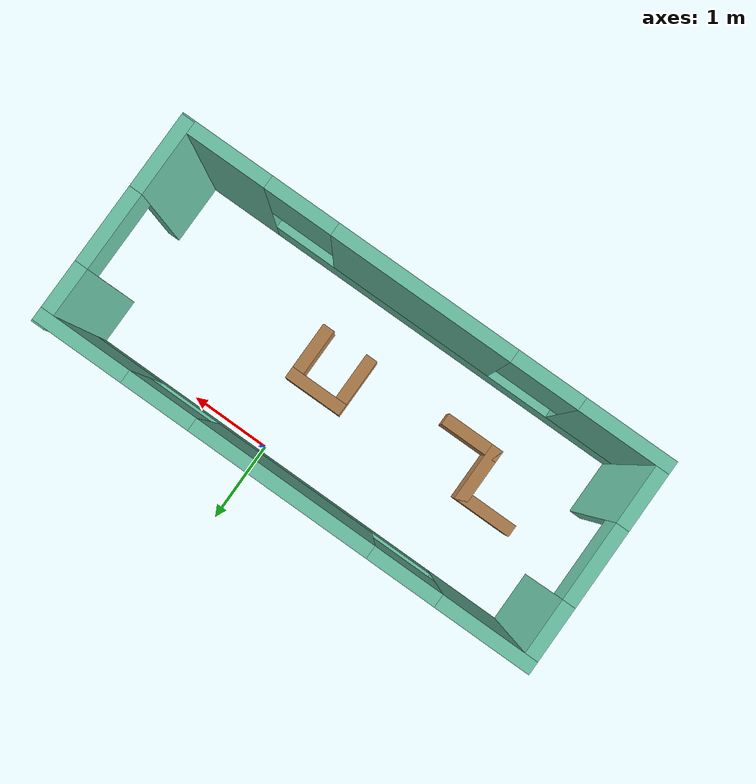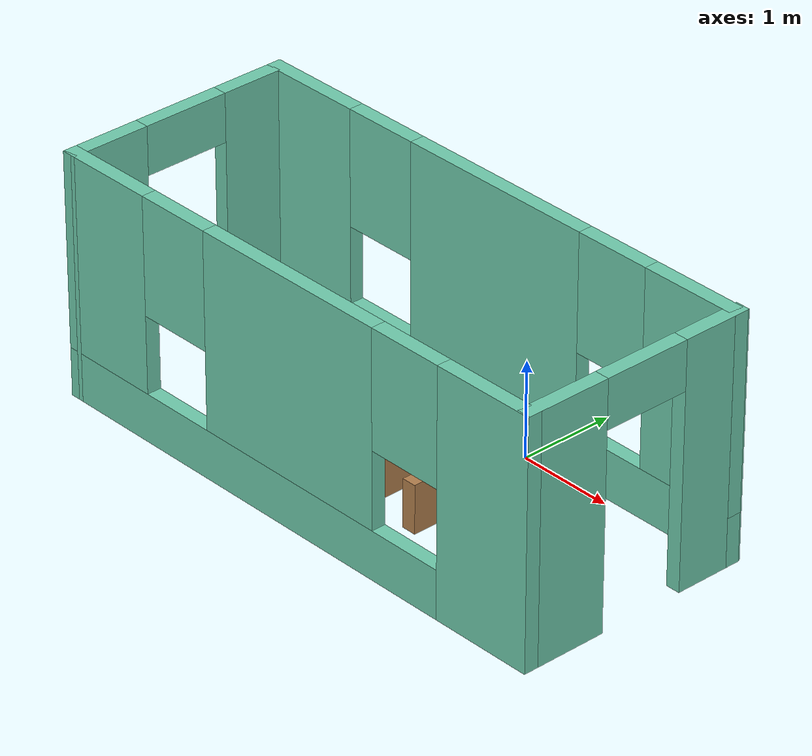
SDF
<?xml version='1.0'?>
<sdf version='1.6'>
  <model name='house_1'>
    <pose frame=''>-0.541561 -1.02646 0 0 -0 0</pose>
    <link name='Wall_0'>
      <pose frame=''>-2.86844 -0.008536 0 0 -0 1.5708</pose>
      <visual name='Wall_0_Visual_0'>
        <pose frame=''>-0.837769 0 1.25 0 -0 0</pose>
        <geometry>
          <box>
            <size>0.824461 0.15 2.5</size>
          </box>
        </geometry>
        <material>
          <script>
            <uri>file://media/materials/scripts/gazebo.material</uri>
            <name>Gazebo/Grey</name>
          </script>
          <ambient>0.435294 0.796078 0.67451 1</ambient>
        </material>
        <meta>
          <layer>0</layer>
        </meta>
      </visual>
      <collision name='Wall_0_Collision_0'>
        <geometry>
          <box>
            <size>0.824461 0.15 2.5</size>
          </box>
        </geometry>
        <pose frame=''>-0.837769 0 1.25 0 -0 0</pose>
      </collision>
      <visual name='Wall_0_Visual_1'>
        <pose frame=''>0.862231 0 1.25 0 -0 0</pose>
        <geometry>
          <box>
            <size>0.775539 0.15 2.5</size>
          </box>
        </geometry>
        <material>
          <script>
            <uri>file://media/materials/scripts/gazebo.material</uri>
            <name>Gazebo/Grey</name>
          </script>
          <ambient>0.435294 0.796078 0.67451 1</ambient>
        </material>
        <meta>
          <layer>0</layer>
        </meta>
      </visual>
      <collision name='Wall_0_Collision_1'>
        <geometry>
          <box>
            <size>0.775539 0.15 2.5</size>
          </box>
        </geometry>
        <pose frame=''>0.862231 0 1.25 0 -0 0</pose>
      </collision>
      <visual name='Wall_0_Visual_2'>
        <pose frame=''>0.024461 0 2.25 0 -0 0</pose>
        <geometry>
          <box>
            <size>0.9 0.15 0.5</size>
          </box>
        </geometry>
        <material>
          <script>
            <uri>file://media/materials/scripts/gazebo.material</uri>
            <name>Gazebo/Grey</name>
          </script>
          <ambient>0.435294 0.796078 0.67451 1</ambient>
        </material>
        <meta>
          <layer>0</layer>
        </meta>
      </visual>
      <collision name='Wall_0_Collision_2'>
        <geometry>
          <box>
            <size>0.9 0.15 0.5</size>
          </box>
        </geometry>
        <pose frame=''>0.024461 0 2.25 0 -0 0</pose>
      </collision>
    </link>
    <link name='Wall_1'>
      <pose frame=''>0 1.16741 0 0 -0 0.000329</pose>
      <visual name='Wall_1_Visual_0'>
        <pose frame=''>-2.38896 0 1.25 0 -0 0</pose>
        <geometry>
          <box>
            <size>1.10948 0.15 2.5</size>
          </box>
        </geometry>
        <material>
          <script>
            <uri>file://media/materials/scripts/gazebo.material</uri>
            <name>Gazebo/Grey</name>
          </script>
          <ambient>0.435294 0.796078 0.67451 1</ambient>
        </material>
        <meta>
          <layer>0</layer>
        </meta>
      </visual>
      <collision name='Wall_1_Collision_0'>
        <geometry>
          <box>
            <size>1.10948 0.15 2.5</size>
          </box>
        </geometry>
        <pose frame=''>-2.38896 0 1.25 0 -0 0</pose>
      </collision>
      <visual name='Wall_1_Visual_1'>
        <pose frame=''>0.554742 0 0.25 0 -0 0</pose>
        <geometry>
          <box>
            <size>4.77792 0.15 0.5</size>
          </box>
        </geometry>
        <material>
          <script>
            <uri>file://media/materials/scripts/gazebo.material</uri>
            <name>Gazebo/Grey</name>
          </script>
          <ambient>0.435294 0.796078 0.67451 1</ambient>
        </material>
        <meta>
          <layer>0</layer>
        </meta>
      </visual>
      <collision name='Wall_1_Collision_1'>
        <geometry>
          <box>
            <size>4.77792 0.15 0.5</size>
          </box>
        </geometry>
        <pose frame=''>0.554742 0 0.25 0 -0 0</pose>
      </collision>
      <visual name='Wall_1_Visual_2'>
        <pose frame=''>0.024303 0 1.5 0 -0 0</pose>
        <geometry>
          <box>
            <size>2.11705 0.15 2</size>
          </box>
        </geometry>
        <material>
          <script>
            <uri>file://media/materials/scripts/gazebo.material</uri>
            <name>Gazebo/Grey</name>
          </script>
          <ambient>0.435294 0.796078 0.67451 1</ambient>
        </material>
        <meta>
          <layer>0</layer>
        </meta>
      </visual>
      <collision name='Wall_1_Collision_2'>
        <geometry>
          <box>
            <size>2.11705 0.15 2</size>
          </box>
        </geometry>
        <pose frame=''>0.024303 0 1.5 0 -0 0</pose>
      </collision>
      <visual name='Wall_1_Visual_3'>
        <pose frame=''>2.41326 0 1.5 0 -0 0</pose>
        <geometry>
          <box>
            <size>1.06088 0.15 2</size>
          </box>
        </geometry>
        <material>
          <script>
            <uri>file://media/materials/scripts/gazebo.material</uri>
            <name>Gazebo/Grey</name>
          </script>
          <ambient>0.435294 0.796078 0.67451 1</ambient>
        </material>
        <meta>
          <layer>0</layer>
        </meta>
      </visual>
      <collision name='Wall_1_Collision_3'>
        <geometry>
          <box>
            <size>1.06088 0.15 2</size>
          </box>
        </geometry>
        <pose frame=''>2.41326 0 1.5 0 -0 0</pose>
      </collision>
      <visual name='Wall_1_Visual_4'>
        <pose frame=''>-1.43422 0 1.9 0 -0 0</pose>
        <geometry>
          <box>
            <size>0.8 0.15 1.2</size>
          </box>
        </geometry>
        <material>
          <script>
            <uri>file://media/materials/scripts/gazebo.material</uri>
            <name>Gazebo/Grey</name>
          </script>
          <ambient>0.435294 0.796078 0.67451 1</ambient>
        </material>
        <meta>
          <layer>0</layer>
        </meta>
      </visual>
      <collision name='Wall_1_Collision_4'>
        <geometry>
          <box>
            <size>0.8 0.15 1.2</size>
          </box>
        </geometry>
        <pose frame=''>-1.43422 0 1.9 0 -0 0</pose>
      </collision>
      <visual name='Wall_1_Visual_5'>
        <pose frame=''>1.48283 0 1.9 0 -0 0</pose>
        <geometry>
          <box>
            <size>0.8 0.15 1.2</size>
          </box>
        </geometry>
        <material>
          <script>
            <uri>file://media/materials/scripts/gazebo.material</uri>
            <name>Gazebo/Grey</name>
          </script>
          <ambient>0.435294 0.796078 0.67451 1</ambient>
        </material>
        <meta>
          <layer>0</layer>
        </meta>
      </visual>
      <collision name='Wall_1_Collision_5'>
        <geometry>
          <box>
            <size>0.8 0.15 1.2</size>
          </box>
        </geometry>
        <pose frame=''>1.48283 0 1.9 0 -0 0</pose>
      </collision>
    </link>
    <link name='Wall_10'>
      <collision name='Wall_10_Collision'>
        <geometry>
          <box>
            <size>0.75 0.15 0.5</size>
          </box>
        </geometry>
        <pose frame=''>0 0 0.25 0 -0 0</pose>
      </collision>
      <visual name='Wall_10_Visual'>
        <pose frame=''>0 0 0.25 0 -0 0</pose>
        <geometry>
          <box>
            <size>0.75 0.15 0.5</size>
          </box>
        </geometry>
        <material>
          <script>
            <uri>file://media/materials/scripts/gazebo.material</uri>
            <name>Gazebo/Wood</name>
          </script>
          <ambient>1 1 1 1</ambient>
        </material>
        <meta>
          <layer>0</layer>
        </meta>
      </visual>
      <pose frame=''>0.411561 0.159464 0 0 -0 0</pose>
    </link>
    <link name='Wall_11'>
      <collision name='Wall_11_Collision'>
        <geometry>
          <box>
            <size>0.75 0.15 0.5</size>
          </box>
        </geometry>
        <pose frame=''>0 0 0.25 0 -0 0</pose>
      </collision>
      <visual name='Wall_11_Visual'>
        <pose frame=''>0 0 0.25 0 -0 0</pose>
        <geometry>
          <box>
            <size>0.75 0.15 0.5</size>
          </box>
        </geometry>
        <material>
          <script>
            <uri>file://media/materials/scripts/gazebo.material</uri>
            <name>Gazebo/Wood</name>
          </script>
          <ambient>1 1 1 1</ambient>
        </material>
        <meta>
          <layer>0</layer>
        </meta>
      </visual>
      <pose frame=''>0.711561 -0.140536 0 0 -0 -1.5708</pose>
    </link>
    <link name='Wall_2'>
      <pose frame=''>2.86844 0.008561 0 0 -0 -1.5708</pose>
      <visual name='Wall_2_Visual_0'>
        <pose frame=''>-0.88778 0 1.25 0 -0 0</pose>
        <geometry>
          <box>
            <size>0.724439 0.15 2.5</size>
          </box>
        </geometry>
        <material>
          <script>
            <uri>file://media/materials/scripts/gazebo.material</uri>
            <name>Gazebo/Grey</name>
          </script>
          <ambient>0.435294 0.796078 0.67451 1</ambient>
        </material>
        <meta>
          <layer>0</layer>
        </meta>
      </visual>
      <collision name='Wall_2_Collision_0'>
        <geometry>
          <box>
            <size>0.724439 0.15 2.5</size>
          </box>
        </geometry>
        <pose frame=''>-0.88778 0 1.25 0 -0 0</pose>
      </collision>
      <visual name='Wall_2_Visual_1'>
        <pose frame=''>0.81222 0 1.25 0 -0 0</pose>
        <geometry>
          <box>
            <size>0.875561 0.15 2.5</size>
          </box>
        </geometry>
        <material>
          <script>
            <uri>file://media/materials/scripts/gazebo.material</uri>
            <name>Gazebo/Grey</name>
          </script>
          <ambient>0.435294 0.796078 0.67451 1</ambient>
        </material>
        <meta>
          <layer>0</layer>
        </meta>
      </visual>
      <collision name='Wall_2_Collision_1'>
        <geometry>
          <box>
            <size>0.875561 0.15 2.5</size>
          </box>
        </geometry>
        <pose frame=''>0.81222 0 1.25 0 -0 0</pose>
      </collision>
      <visual name='Wall_2_Visual_2'>
        <pose frame=''>-0.075561 0 2.25 0 -0 0</pose>
        <geometry>
          <box>
            <size>0.9 0.15 0.5</size>
          </box>
        </geometry>
        <material>
          <script>
            <uri>file://media/materials/scripts/gazebo.material</uri>
            <name>Gazebo/Grey</name>
          </script>
          <ambient>0.435294 0.796078 0.67451 1</ambient>
        </material>
        <meta>
          <layer>0</layer>
        </meta>
      </visual>
      <collision name='Wall_2_Collision_2'>
        <geometry>
          <box>
            <size>0.9 0.15 0.5</size>
          </box>
        </geometry>
        <pose frame=''>-0.075561 0 2.25 0 -0 0</pose>
      </collision>
    </link>
    <link name='Wall_3'>
      <pose frame=''>0 -1.18259 0 0 -0 -3.14126</pose>
      <visual name='Wall_3_Visual_0'>
        <pose frame=''>-2.40433 0 1.25 0 -0 0</pose>
        <geometry>
          <box>
            <size>1.07875 0.15 2.5</size>
          </box>
        </geometry>
        <material>
          <script>
            <uri>file://media/materials/scripts/gazebo.material</uri>
            <name>Gazebo/Grey</name>
          </script>
          <ambient>0.435294 0.796078 0.67451 1</ambient>
        </material>
        <meta>
          <layer>0</layer>
        </meta>
      </visual>
      <collision name='Wall_3_Collision_0'>
        <geometry>
          <box>
            <size>1.07875 0.15 2.5</size>
          </box>
        </geometry>
        <pose frame=''>-2.40433 0 1.25 0 -0 0</pose>
      </collision>
      <visual name='Wall_3_Visual_1'>
        <pose frame=''>0.539375 0 0.25 0 -0 0</pose>
        <geometry>
          <box>
            <size>4.80866 0.15 0.5</size>
          </box>
        </geometry>
        <material>
          <script>
            <uri>file://media/materials/scripts/gazebo.material</uri>
            <name>Gazebo/Grey</name>
          </script>
          <ambient>0.435294 0.796078 0.67451 1</ambient>
        </material>
        <meta>
          <layer>0</layer>
        </meta>
      </visual>
      <collision name='Wall_3_Collision_1'>
        <geometry>
          <box>
            <size>4.80866 0.15 0.5</size>
          </box>
        </geometry>
        <pose frame=''>0.539375 0 0.25 0 -0 0</pose>
      </collision>
      <visual name='Wall_3_Visual_2'>
        <pose frame=''>0.005122 0 1.5 0 -0 0</pose>
        <geometry>
          <box>
            <size>2.14015 0.15 2</size>
          </box>
        </geometry>
        <material>
          <script>
            <uri>file://media/materials/scripts/gazebo.material</uri>
            <name>Gazebo/Grey</name>
          </script>
          <ambient>0.435294 0.796078 0.67451 1</ambient>
        </material>
        <meta>
          <layer>0</layer>
        </meta>
      </visual>
      <collision name='Wall_3_Collision_2'>
        <geometry>
          <box>
            <size>2.14015 0.15 2</size>
          </box>
        </geometry>
        <pose frame=''>0.005122 0 1.5 0 -0 0</pose>
      </collision>
      <visual name='Wall_3_Visual_3'>
        <pose frame=''>2.40945 0 1.5 0 -0 0</pose>
        <geometry>
          <box>
            <size>1.06851 0.15 2</size>
          </box>
        </geometry>
        <material>
          <script>
            <uri>file://media/materials/scripts/gazebo.material</uri>
            <name>Gazebo/Grey</name>
          </script>
          <ambient>0.435294 0.796078 0.67451 1</ambient>
        </material>
        <meta>
          <layer>0</layer>
        </meta>
      </visual>
      <collision name='Wall_3_Collision_3'>
        <geometry>
          <box>
            <size>1.06851 0.15 2</size>
          </box>
        </geometry>
        <pose frame=''>2.40945 0 1.5 0 -0 0</pose>
      </collision>
      <visual name='Wall_3_Visual_4'>
        <pose frame=''>-1.46495 0 1.9 0 -0 0</pose>
        <geometry>
          <box>
            <size>0.8 0.15 1.2</size>
          </box>
        </geometry>
        <material>
          <script>
            <uri>file://media/materials/scripts/gazebo.material</uri>
            <name>Gazebo/Grey</name>
          </script>
          <ambient>0.435294 0.796078 0.67451 1</ambient>
        </material>
        <meta>
          <layer>0</layer>
        </meta>
      </visual>
      <collision name='Wall_3_Collision_4'>
        <geometry>
          <box>
            <size>0.8 0.15 1.2</size>
          </box>
        </geometry>
        <pose frame=''>-1.46495 0 1.9 0 -0 0</pose>
      </collision>
      <visual name='Wall_3_Visual_5'>
        <pose frame=''>1.4752 0 1.9 0 -0 0</pose>
        <geometry>
          <box>
            <size>0.8 0.15 1.2</size>
          </box>
        </geometry>
        <material>
          <script>
            <uri>file://media/materials/scripts/gazebo.material</uri>
            <name>Gazebo/Grey</name>
          </script>
          <ambient>0.435294 0.796078 0.67451 1</ambient>
        </material>
        <meta>
          <layer>0</layer>
        </meta>
      </visual>
      <collision name='Wall_3_Collision_5'>
        <geometry>
          <box>
            <size>0.8 0.15 1.2</size>
          </box>
        </geometry>
        <pose frame=''>1.4752 0 1.9 0 -0 0</pose>
      </collision>
    </link>
    <link name='Wall_5'>
      <collision name='Wall_5_Collision'>
        <geometry>
          <box>
            <size>0.75 0.15 0.5</size>
          </box>
        </geometry>
        <pose frame=''>0 0 0.25 0 -0 0</pose>
      </collision>
      <visual name='Wall_5_Visual'>
        <pose frame=''>0 0 0.25 0 -0 0</pose>
        <geometry>
          <box>
            <size>0.75 0.15 0.5</size>
          </box>
        </geometry>
        <material>
          <script>
            <uri>file://media/materials/scripts/gazebo.material</uri>
            <name>Gazebo/Wood</name>
          </script>
          <ambient>1 1 1 1</ambient>
        </material>
        <meta>
          <layer>0</layer>
        </meta>
      </visual>
      <pose frame=''>-1.94144 0.163464 0 0 -0 0</pose>
    </link>
    <link name='Wall_6'>
      <collision name='Wall_6_Collision'>
        <geometry>
          <box>
            <size>0.75 0.15 0.5</size>
          </box>
        </geometry>
        <pose frame=''>0 0 0.25 0 -0 0</pose>
      </collision>
      <visual name='Wall_6_Visual'>
        <pose frame=''>0 0 0.25 0 -0 0</pose>
        <geometry>
          <box>
            <size>0.75 0.15 0.5</size>
          </box>
        </geometry>
        <material>
          <script>
            <uri>file://media/materials/scripts/gazebo.material</uri>
            <name>Gazebo/Wood</name>
          </script>
          <ambient>1 1 1 1</ambient>
        </material>
        <meta>
          <layer>0</layer>
        </meta>
      </visual>
      <pose frame=''>-1.64144 -0.136536 0 0 -0 -1.5708</pose>
    </link>
    <link name='Wall_7'>
      <collision name='Wall_7_Collision'>
        <geometry>
          <box>
            <size>0.75 0.15 0.5</size>
          </box>
        </geometry>
        <pose frame=''>0 0 0.25 0 -0 0</pose>
      </collision>
      <visual name='Wall_7_Visual'>
        <pose frame=''>0 0 0.25 0 -0 0</pose>
        <geometry>
          <box>
            <size>0.75 0.15 0.5</size>
          </box>
        </geometry>
        <material>
          <script>
            <uri>file://media/materials/scripts/gazebo.material</uri>
            <name>Gazebo/Wood</name>
          </script>
          <ambient>1 1 1 1</ambient>
        </material>
        <meta>
          <layer>0</layer>
        </meta>
      </visual>
      <pose frame=''>-1.34144 -0.436536 0 0 -0 0</pose>
    </link>
    <link name='Wall_9'>
      <collision name='Wall_9_Collision'>
        <geometry>
          <box>
            <size>0.75 0.15 0.5</size>
          </box>
        </geometry>
        <pose frame=''>0 0 0.25 0 -0 0</pose>
      </collision>
      <visual name='Wall_9_Visual'>
        <pose frame=''>0 0 0.25 0 -0 0</pose>
        <geometry>
          <box>
            <size>0.75 0.15 0.5</size>
          </box>
        </geometry>
        <material>
          <script>
            <uri>file://media/materials/scripts/gazebo.material</uri>
            <name>Gazebo/Wood</name>
          </script>
          <ambient>1 1 1 1</ambient>
        </material>
        <meta>
          <layer>0</layer>
        </meta>
      </visual>
      <pose frame=''>0.111561 -0.140536 0 0 -0 1.5708</pose>
    </link>
    <static>1</static>
  </model>
</sdf>
